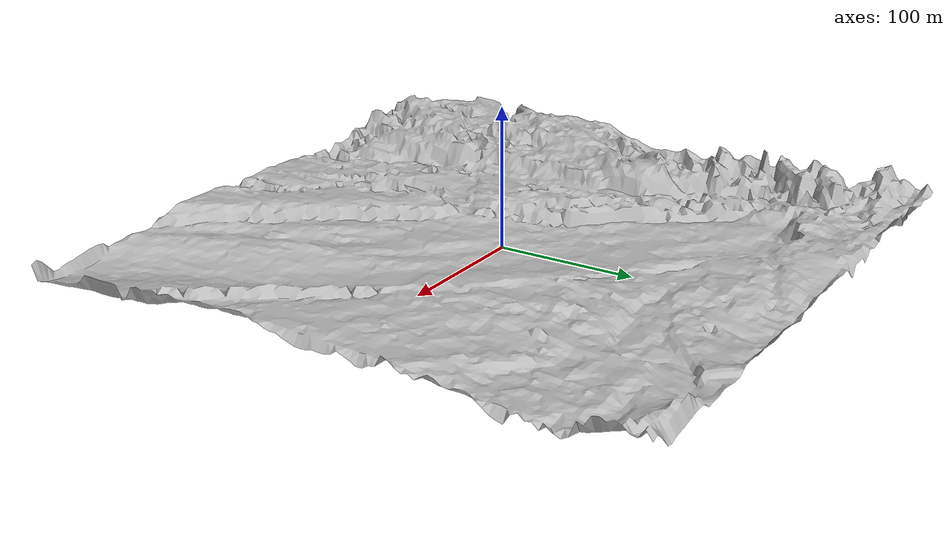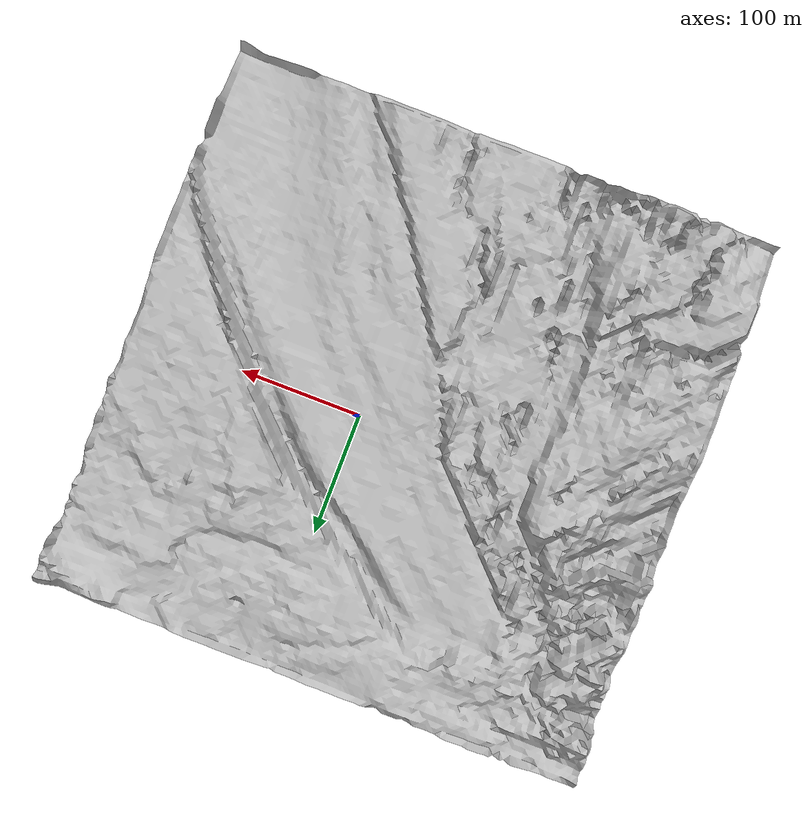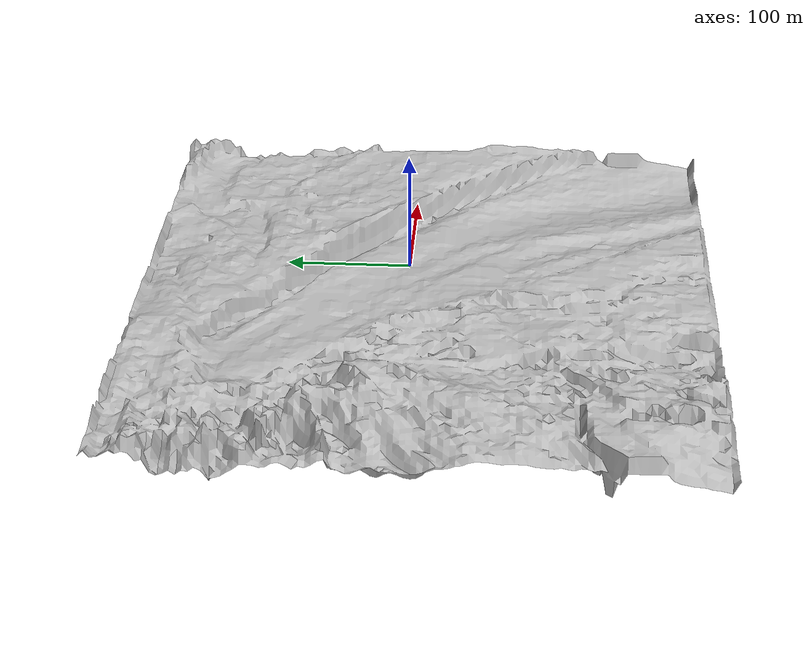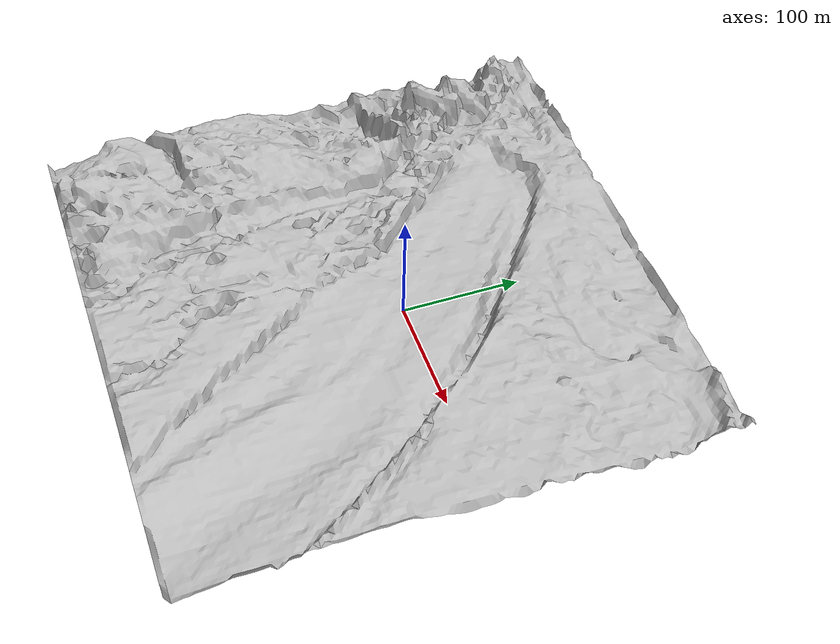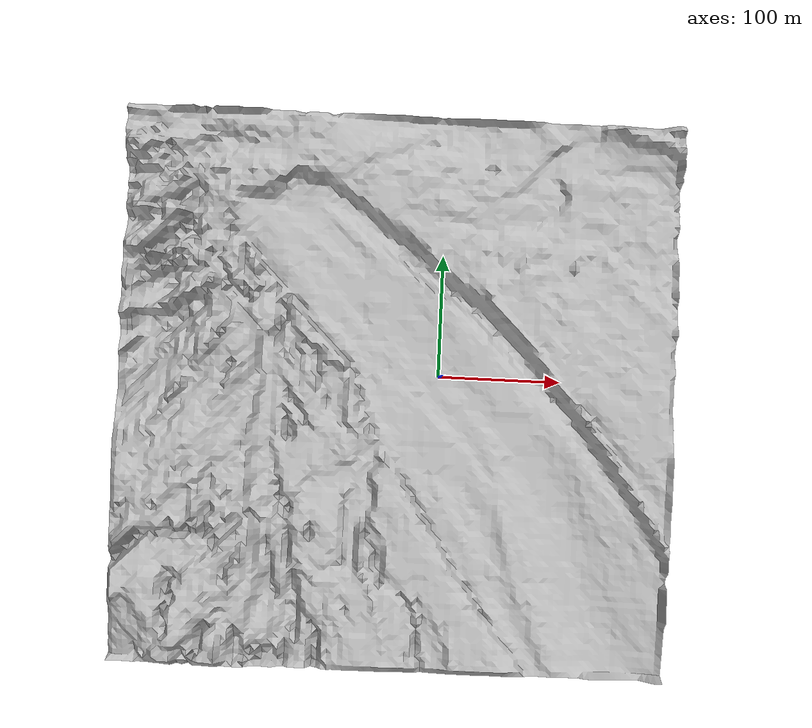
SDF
<sdf version="1.7">
 <world name="default">
  <light name="sun" type="directional">
   <pose>0 0 10 0 -0 0</pose>
   <diffuse>0.8 0.8 0.8 1</diffuse>
   <specular>0.2 0.2 0.2 1</specular>
   <attenuation>
    <range>1000</range>
    <constant>0.9</constant>
    <linear>0.01</linear>
    <quadratic>0.001</quadratic>
   </attenuation>
   <direction>-0.5 0.1 -0.9</direction>
   <spot><inner_angle>0</inner_angle><outer_angle>0</outer_angle><falloff>0</falloff></spot>
  </light>
  <gravity>0 0 -9.8</gravity>
  <magnetic_field>6e-06 2.3e-05 -4.2e-05</magnetic_field>
  <atmosphere type="adiabatic"/>
  <physics type="ode">
   <max_step_size>0.001</max_step_size>
   <real_time_factor>1</real_time_factor>
   <real_time_update_rate>1000</real_time_update_rate>
  </physics>
  <scene><ambient>0.4 0.4 0.4 1</ambient><background>0.7 0.7 0.7 1</background><shadows>1</shadows></scene>
  <spherical_coordinates>
   <surface_model>EARTH_WGS84</surface_model>
   <latitude_deg>0</latitude_deg>
   <longitude_deg>0</longitude_deg>
   <elevation>0</elevation>
   <heading_deg>0</heading_deg>
  </spherical_coordinates>
  <model name="sand_heightmap">
   <static>1</static>
   <link name="link">
    <collision name="ground">
     <geometry><mesh><uri>model://sand_heightmap/meshes/heightmap.dae</uri></mesh></geometry>
    </collision>
    <visual name="ground_sand">
     <geometry><mesh><uri>model://sand_heightmap/meshes/heightmap.dae</uri></mesh></geometry>
     <material>
      <script>
       <uri>file://media/materials/scripts/sand.material</uri>
       <name>UUVSimulator/SandAndStones</name>
      </script>
      <emissive>0.6 0.6 0.6 1</emissive>
     </material>
    </visual>
   </link>
   <plugin name="libgazebo_ros_p3d" filename="libgazebo_ros_p3d.so">
    <ros><namespace>/</namespace><remapping>odom:=sand_heightmap</remapping></ros>
    <frame_name>world</frame_name>
    <body_name>link</body_name>
    <update_rate>30.0</update_rate>
    <gaussian_noise>0</gaussian_noise>
   </plugin>
   <pose>-34.5692 -14.7991 0 0 -0 0</pose>
  </model>
 </world>
</sdf>
